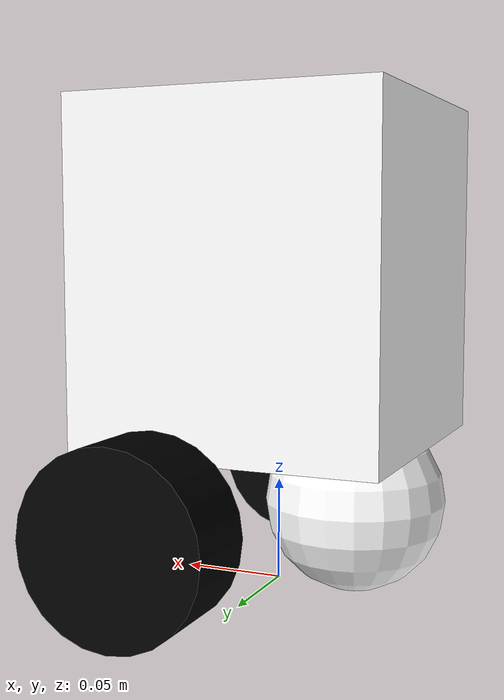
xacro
<?xml version="1.0"?>
<robot xmlns:xacro="http://ros.org/wiki/xacro">

  <!-- COLOR -->
  <material name="white"> <color rgba="1 1 1 1" /> </material>
  <material name="black"> <color rgba="0 0 0 1" /> </material>
  <material name="blue">  <color rgba="0 0 1 1"/>  </material>

  <!-- Define robot constants -->
  <xacro:property name="base_width" value="0.15"/>
  <xacro:property name="base_length" value="0.15"/>
  <xacro:property name="base_height" value="0.165"/>

  <xacro:property name="wheel_radius" value="0.0435"/>
  <xacro:property name="wheel_width" value="0.04"/>
  <xacro:property name="wheel_ygap" value="0.21"/>
  <xacro:property name="wheel_zoff" value="0.027"/>
  <xacro:property name="wheel_xoff" value="0.025"/>

  <xacro:property name="caster_xoff" value="0.04"/>

  <!-- Define some commonly used intertial properties  -->
  <!-- reference from nav2 urdf document  -->
  <xacro:macro name="box_inertia" params="m w h d">
    <inertial>
      <origin xyz="0 0 0" rpy="${pi/2} 0 ${pi/2}"/>
      <mass value="${m}"/>
      <inertia ixx="${(m/12) * (h*h + d*d)}" ixy="0.0" ixz="0.0" iyy="${(m/12) * (w*w + d*d)}" iyz="0.0" izz="${(m/12) * (w*w + h*h)}"/>
    </inertial>
  </xacro:macro>

  <xacro:macro name="cylinder_inertia" params="m r h">
    <inertial>
      <origin xyz="0 0 0" rpy="${pi/2} 0 0" />
      <mass value="${m}"/>
      <inertia ixx="${(m/12) * (3*r*r + h*h)}" ixy = "0.0" ixz = "0.0" iyy="${(m/12) * (3*r*r + h*h)}" iyz = "0.0" izz="${(m/2) * (r*r)}"/>
    </inertial>
  </xacro:macro>

  <xacro:macro name="sphere_inertia" params="m r">
    <inertial>
      <mass value="${m}"/>
      <inertia ixx="${(2/5) * m * (r*r)}" ixy="0.0" ixz="0.0" iyy="${(2/5) * m * (r*r)}" iyz="0.0" izz="${(2/5) * m * (r*r)}"/>
    </inertial>
  </xacro:macro>

  <!-- Robot Base -->
  <link name="base_link">

  </link>

  <!-- Robot Footprint -->
  <link name="base_footprint">
  </link>

  <joint name="base_footprint_joint" type="fixed">
    <parent link="base_link"/>
    <child link="base_footprint"/>
    <origin xyz="0.0 0.0 0.0" rpy="0 0 0"/>
  </joint>

  <!-- body link -->
  <link name="body_link">
    <visual>
        <geometry>
          <box size="${base_length} ${base_width} ${base_height}"/>
        </geometry>
        <material name="white"/>
    </visual>

    <collision>
      <geometry>
        <box size="${base_length} ${base_width} ${base_height}"/>
      </geometry>
    </collision>

    <xacro:box_inertia m="15" w="${base_width}" d="${base_length}" h="${base_height}"/>
  </link>

  <joint name="body_link_joint" type="fixed">
    <parent link="base_link"/>
    <child link="body_link"/>
    <origin xyz="0.0 0.0 ${base_height/2+wheel_zoff+wheel_radius}" rpy="0 0 0"/>
  </joint>

  <gazebo reference="base_link"><material>Gazebo/White</material></gazebo>

  <!-- Wheels -->
  <xacro:macro name="wheel" params="prefix x_reflect y_reflect">
    <link name="${prefix}_link">
      <visual>
        <origin xyz="0 0 0" rpy="${pi/2} 0 0"/>
        <geometry>
          <cylinder radius="${wheel_radius}" length="${wheel_width}"/>
        </geometry>
        <material name="black"/>
      </visual>

      <collision>
        <origin xyz="0 0 0" rpy="${pi/2} 0 0"/>
        <geometry>
          <sphere radius="${wheel_radius}"/>
        </geometry>
      </collision>

      <xacro:cylinder_inertia m="0.5" r="${wheel_radius}" h="${wheel_width}"/>
    </link>

    <joint name="${prefix}_joint" type="continuous">
      <parent link="body_link"/>
      <child link="${prefix}_link"/>
      <origin xyz="${x_reflect*wheel_xoff} ${y_reflect*(wheel_ygap/2)} ${-base_height/2-wheel_zoff}" rpy="0 0 0"/>
      <axis xyz="0 1 0"/>
    </joint>
  </xacro:macro>

  <xacro:wheel prefix="left_wheel" x_reflect="1" y_reflect="1" />
  <xacro:wheel prefix="right_wheel" x_reflect="1" y_reflect="-1" />
  <gazebo reference="left_wheel_link"><material>Gazebo/Black</material></gazebo>
  <gazebo reference="right_wheel_link"><material>Gazebo/Black</material></gazebo>

  <!-- caster -->
  <link name="caster_link">
    <visual>
      <geometry>
        <sphere radius="${wheel_radius}"/>
      </geometry>
      <material name="white"/>
    </visual>

    <collision>
      <origin xyz="0 0 0" rpy="0 0 0"/>
      <geometry>
        <sphere radius="${wheel_radius}"/>
      </geometry>
    </collision>

    <xacro:sphere_inertia m="0.01" r="${wheel_radius}"/>
  </link>

  <joint name="caster_joint" type="fixed">
    <parent link="body_link"/>
    <child link="caster_link"/>
    <origin xyz="${-(caster_xoff)} 0.0 ${-base_height/2-wheel_zoff}" rpy="0 0 0"/>
  </joint>

  <gazebo reference="caster_link">
        <material>Gazebo/White</material>
        <mu1 value="0.001"/>
        <mu2 value="0.001"/>
  </gazebo>

</robot>
